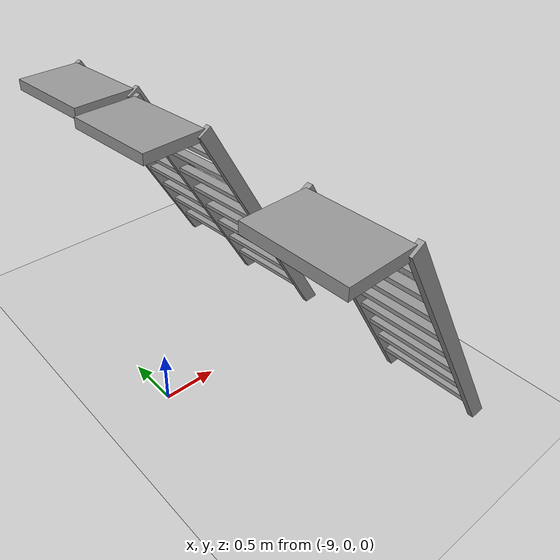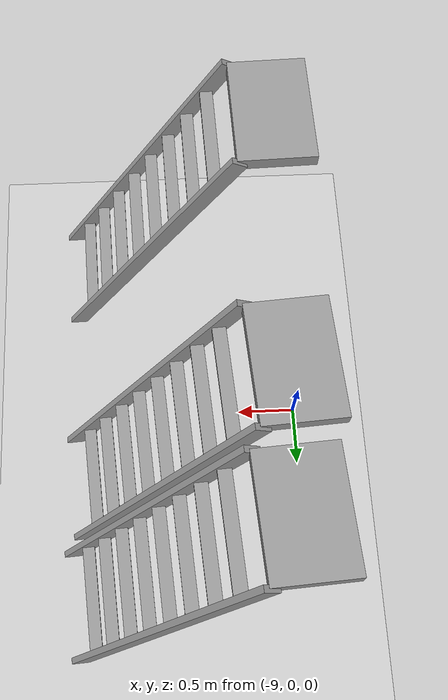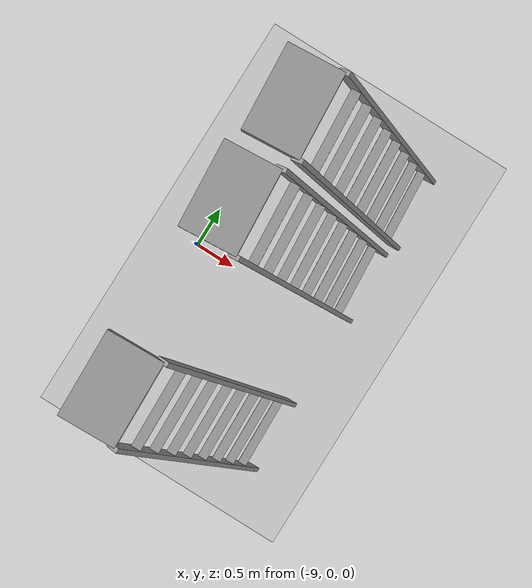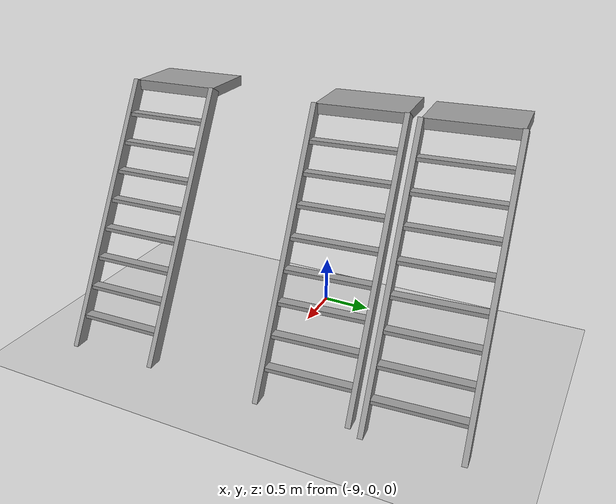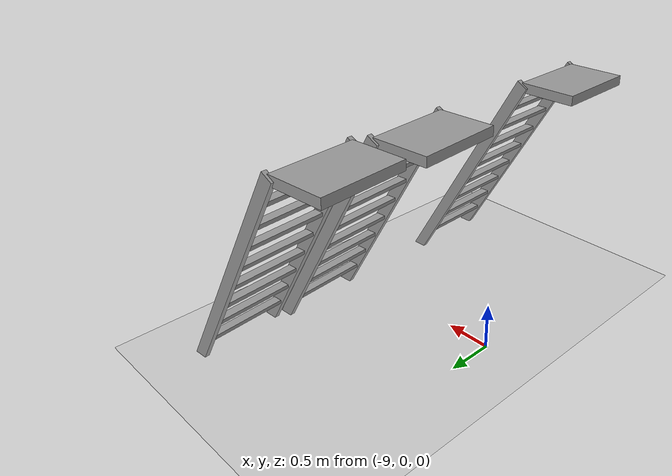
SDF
<sdf version="1.4">
 <world name="IGVC_Advanced_Course">
  <model name="ground_plane">
   <static>1</static>
   <link name="link">
    <collision name="collision">
     <geometry><plane><normal>0 0 1</normal><size>100 100</size></plane></geometry>
     <surface><friction><ode><mu>100</mu><mu2>50</mu2></ode></friction></surface>
    </collision>
    <visual name="visual">
     <cast_shadows>0</cast_shadows>
     <geometry><plane><normal>0 0 1</normal><size>100 100</size></plane></geometry>
     <material>
      <script><uri>file://media/materials/scripts/gazebo.material</uri><name>Gazebo/Grey</name></script>
     </material>
    </visual>
    <velocity_decay><linear>0</linear><angular>0</angular></velocity_decay>
   </link>
  </model>
  <model name="ladder_60deg_0rails_1">
   <static>1</static>
   <link name="step0">
    <pose>0 0.15396 0.266667 0 -0 0</pose>
    <inertial>
     <mass>9.75482</mass>
     <inertia>
      <ixx>0.00957124</ixx>
      <iyy>0.65963</iyy>
      <izz>0.666842</izz>
      <ixy>0</ixy>
      <ixz>0</ixz>
      <iyz>0</iyz>
     </inertia>
    </inertial>
    <collision name="collision"><geometry><box><size>0.9 0.1016 0.0381</size></box></geometry></collision>
    <visual name="visual">
     <geometry><box><size>0.9 0.1016 0.0381</size></box></geometry>
     <material>
      <script><uri>file://media/materials/scripts/gazebo.material</uri><name>Gazebo/Grey</name></script>
     </material>
    </visual>
    <velocity_decay><linear>0</linear><angular>0</angular></velocity_decay>
   </link>
   <link name="step1">
    <pose>0 0.30792 0.533333 0 -0 0</pose>
    <inertial>
     <mass>9.75482</mass>
     <inertia>
      <ixx>0.00957124</ixx>
      <iyy>0.65963</iyy>
      <izz>0.666842</izz>
      <ixy>0</ixy>
      <ixz>0</ixz>
      <iyz>0</iyz>
     </inertia>
    </inertial>
    <collision name="collision"><geometry><box><size>0.9 0.1016 0.0381</size></box></geometry></collision>
    <visual name="visual">
     <geometry><box><size>0.9 0.1016 0.0381</size></box></geometry>
     <material>
      <script><uri>file://media/materials/scripts/gazebo.material</uri><name>Gazebo/Grey</name></script>
     </material>
    </visual>
    <velocity_decay><linear>0</linear><angular>0</angular></velocity_decay>
   </link>
   <link name="step2">
    <pose>0 0.46188 0.8 0 -0 0</pose>
    <inertial>
     <mass>9.75482</mass>
     <inertia>
      <ixx>0.00957124</ixx>
      <iyy>0.65963</iyy>
      <izz>0.666842</izz>
      <ixy>0</ixy>
      <ixz>0</ixz>
      <iyz>0</iyz>
     </inertia>
    </inertial>
    <collision name="collision"><geometry><box><size>0.9 0.1016 0.0381</size></box></geometry></collision>
    <visual name="visual">
     <geometry><box><size>0.9 0.1016 0.0381</size></box></geometry>
     <material>
      <script><uri>file://media/materials/scripts/gazebo.material</uri><name>Gazebo/Grey</name></script>
     </material>
    </visual>
    <velocity_decay><linear>0</linear><angular>0</angular></velocity_decay>
   </link>
   <link name="step3">
    <pose>0 0.61584 1.06667 0 -0 0</pose>
    <inertial>
     <mass>9.75482</mass>
     <inertia>
      <ixx>0.00957124</ixx>
      <iyy>0.65963</iyy>
      <izz>0.666842</izz>
      <ixy>0</ixy>
      <ixz>0</ixz>
      <iyz>0</iyz>
     </inertia>
    </inertial>
    <collision name="collision"><geometry><box><size>0.9 0.1016 0.0381</size></box></geometry></collision>
    <visual name="visual">
     <geometry><box><size>0.9 0.1016 0.0381</size></box></geometry>
     <material>
      <script><uri>file://media/materials/scripts/gazebo.material</uri><name>Gazebo/Grey</name></script>
     </material>
    </visual>
    <velocity_decay><linear>0</linear><angular>0</angular></velocity_decay>
   </link>
   <link name="step4">
    <pose>0 0.7698 1.33333 0 -0 0</pose>
    <inertial>
     <mass>9.75482</mass>
     <inertia>
      <ixx>0.00957124</ixx>
      <iyy>0.65963</iyy>
      <izz>0.666842</izz>
      <ixy>0</ixy>
      <ixz>0</ixz>
      <iyz>0</iyz>
     </inertia>
    </inertial>
    <collision name="collision"><geometry><box><size>0.9 0.1016 0.0381</size></box></geometry></collision>
    <visual name="visual">
     <geometry><box><size>0.9 0.1016 0.0381</size></box></geometry>
     <material>
      <script><uri>file://media/materials/scripts/gazebo.material</uri><name>Gazebo/Grey</name></script>
     </material>
    </visual>
    <velocity_decay><linear>0</linear><angular>0</angular></velocity_decay>
   </link>
   <link name="step5">
    <pose>0 0.92376 1.6 0 -0 0</pose>
    <inertial>
     <mass>9.75482</mass>
     <inertia>
      <ixx>0.00957124</ixx>
      <iyy>0.65963</iyy>
      <izz>0.666842</izz>
      <ixy>0</ixy>
      <ixz>0</ixz>
      <iyz>0</iyz>
     </inertia>
    </inertial>
    <collision name="collision"><geometry><box><size>0.9 0.1016 0.0381</size></box></geometry></collision>
    <visual name="visual">
     <geometry><box><size>0.9 0.1016 0.0381</size></box></geometry>
     <material>
      <script><uri>file://media/materials/scripts/gazebo.material</uri><name>Gazebo/Grey</name></script>
     </material>
    </visual>
    <velocity_decay><linear>0</linear><angular>0</angular></velocity_decay>
   </link>
   <link name="step6">
    <pose>0 1.07772 1.86667 0 -0 0</pose>
    <inertial>
     <mass>9.75482</mass>
     <inertia>
      <ixx>0.00957124</ixx>
      <iyy>0.65963</iyy>
      <izz>0.666842</izz>
      <ixy>0</ixy>
      <ixz>0</ixz>
      <iyz>0</iyz>
     </inertia>
    </inertial>
    <collision name="collision"><geometry><box><size>0.9 0.1016 0.0381</size></box></geometry></collision>
    <visual name="visual">
     <geometry><box><size>0.9 0.1016 0.0381</size></box></geometry>
     <material>
      <script><uri>file://media/materials/scripts/gazebo.material</uri><name>Gazebo/Grey</name></script>
     </material>
    </visual>
    <velocity_decay><linear>0</linear><angular>0</angular></velocity_decay>
   </link>
   <link name="step7">
    <pose>0 1.23168 2.13333 0 -0 0</pose>
    <inertial>
     <mass>9.75482</mass>
     <inertia>
      <ixx>0.00957124</ixx>
      <iyy>0.65963</iyy>
      <izz>0.666842</izz>
      <ixy>0</ixy>
      <ixz>0</ixz>
      <iyz>0</iyz>
     </inertia>
    </inertial>
    <collision name="collision"><geometry><box><size>0.9 0.1016 0.0381</size></box></geometry></collision>
    <visual name="visual">
     <geometry><box><size>0.9 0.1016 0.0381</size></box></geometry>
     <material>
      <script><uri>file://media/materials/scripts/gazebo.material</uri><name>Gazebo/Grey</name></script>
     </material>
    </visual>
    <velocity_decay><linear>0</linear><angular>0</angular></velocity_decay>
   </link>
   <link name="landing">
    <pose>0 1.68564 2.4 0 -0 0</pose>
    <inertial>
     <mass>57.6072</mass>
     <inertia><ixx>1.73518</ixx><iyy>3.89545</iyy><izz>5.6167</izz><ixy>0</ixy><ixz>0</ixz><iyz>0</iyz></inertia>
    </inertial>
    <collision name="collision"><geometry><box><size>0.9 0.6 0.1016</size></box></geometry></collision>
    <visual name="visual">
     <geometry><box><size>0.9 0.6 0.1016</size></box></geometry>
     <material>
      <script><uri>file://media/materials/scripts/gazebo.material</uri><name>Gazebo/Grey</name></script>
     </material>
    </visual>
    <velocity_decay><linear>0</linear><angular>0</angular></velocity_decay>
   </link>
   <link name="left_side_wall">
    <pose>-0.45 0.69282 1.2 1.0472 -0 0</pose>
    <collision name="collision"><geometry><box><size>0.0508 2.85128 0.13</size></box></geometry></collision>
    <visual name="visual">
     <geometry><box><size>0.0508 2.85128 0.13</size></box></geometry>
     <material>
      <script><uri>file://media/materials/scripts/gazebo.material</uri><name>Gazebo/Grey</name></script>
     </material>
    </visual>
    <velocity_decay><linear>0</linear><angular>0</angular></velocity_decay>
   </link>
   <link name="right_side_wall">
    <pose>0.45 0.69282 1.2 1.0472 -0 0</pose>
    <collision name="collision"><geometry><box><size>0.0508 2.85128 0.13</size></box></geometry></collision>
    <visual name="visual">
     <geometry><box><size>0.0508 2.85128 0.13</size></box></geometry>
     <material>
      <script><uri>file://media/materials/scripts/gazebo.material</uri><name>Gazebo/Grey</name></script>
     </material>
    </visual>
    <velocity_decay><linear>0</linear><angular>0</angular></velocity_decay>
   </link>
   <pose>-7.03222 -1.46285 0 0 -0 1.6</pose>
  </model>
  <model name="ladder_60deg_0rails_3">
   <static>1</static>
   <link name="step0">
    <pose>0 0.15396 0.266667 0 -0 0</pose>
    <inertial>
     <mass>9.75482</mass>
     <inertia>
      <ixx>0.00957124</ixx>
      <iyy>0.65963</iyy>
      <izz>0.666842</izz>
      <ixy>0</ixy>
      <ixz>0</ixz>
      <iyz>0</iyz>
     </inertia>
    </inertial>
    <collision name="collision"><geometry><box><size>0.9 0.1016 0.0381</size></box></geometry></collision>
    <visual name="visual">
     <geometry><box><size>0.9 0.1016 0.0381</size></box></geometry>
     <material>
      <script><uri>file://media/materials/scripts/gazebo.material</uri><name>Gazebo/Grey</name></script>
     </material>
    </visual>
    <velocity_decay><linear>0</linear><angular>0</angular></velocity_decay>
   </link>
   <link name="step1">
    <pose>0 0.30792 0.533333 0 -0 0</pose>
    <inertial>
     <mass>9.75482</mass>
     <inertia>
      <ixx>0.00957124</ixx>
      <iyy>0.65963</iyy>
      <izz>0.666842</izz>
      <ixy>0</ixy>
      <ixz>0</ixz>
      <iyz>0</iyz>
     </inertia>
    </inertial>
    <collision name="collision"><geometry><box><size>0.9 0.1016 0.0381</size></box></geometry></collision>
    <visual name="visual">
     <geometry><box><size>0.9 0.1016 0.0381</size></box></geometry>
     <material>
      <script><uri>file://media/materials/scripts/gazebo.material</uri><name>Gazebo/Grey</name></script>
     </material>
    </visual>
    <velocity_decay><linear>0</linear><angular>0</angular></velocity_decay>
   </link>
   <link name="step2">
    <pose>0 0.46188 0.8 0 -0 0</pose>
    <inertial>
     <mass>9.75482</mass>
     <inertia>
      <ixx>0.00957124</ixx>
      <iyy>0.65963</iyy>
      <izz>0.666842</izz>
      <ixy>0</ixy>
      <ixz>0</ixz>
      <iyz>0</iyz>
     </inertia>
    </inertial>
    <collision name="collision"><geometry><box><size>0.9 0.1016 0.0381</size></box></geometry></collision>
    <visual name="visual">
     <geometry><box><size>0.9 0.1016 0.0381</size></box></geometry>
     <material>
      <script><uri>file://media/materials/scripts/gazebo.material</uri><name>Gazebo/Grey</name></script>
     </material>
    </visual>
    <velocity_decay><linear>0</linear><angular>0</angular></velocity_decay>
   </link>
   <link name="step3">
    <pose>0 0.61584 1.06667 0 -0 0</pose>
    <inertial>
     <mass>9.75482</mass>
     <inertia>
      <ixx>0.00957124</ixx>
      <iyy>0.65963</iyy>
      <izz>0.666842</izz>
      <ixy>0</ixy>
      <ixz>0</ixz>
      <iyz>0</iyz>
     </inertia>
    </inertial>
    <collision name="collision"><geometry><box><size>0.9 0.1016 0.0381</size></box></geometry></collision>
    <visual name="visual">
     <geometry><box><size>0.9 0.1016 0.0381</size></box></geometry>
     <material>
      <script><uri>file://media/materials/scripts/gazebo.material</uri><name>Gazebo/Grey</name></script>
     </material>
    </visual>
    <velocity_decay><linear>0</linear><angular>0</angular></velocity_decay>
   </link>
   <link name="step4">
    <pose>0 0.7698 1.33333 0 -0 0</pose>
    <inertial>
     <mass>9.75482</mass>
     <inertia>
      <ixx>0.00957124</ixx>
      <iyy>0.65963</iyy>
      <izz>0.666842</izz>
      <ixy>0</ixy>
      <ixz>0</ixz>
      <iyz>0</iyz>
     </inertia>
    </inertial>
    <collision name="collision"><geometry><box><size>0.9 0.1016 0.0381</size></box></geometry></collision>
    <visual name="visual">
     <geometry><box><size>0.9 0.1016 0.0381</size></box></geometry>
     <material>
      <script><uri>file://media/materials/scripts/gazebo.material</uri><name>Gazebo/Grey</name></script>
     </material>
    </visual>
    <velocity_decay><linear>0</linear><angular>0</angular></velocity_decay>
   </link>
   <link name="step5">
    <pose>0 0.92376 1.6 0 -0 0</pose>
    <inertial>
     <mass>9.75482</mass>
     <inertia>
      <ixx>0.00957124</ixx>
      <iyy>0.65963</iyy>
      <izz>0.666842</izz>
      <ixy>0</ixy>
      <ixz>0</ixz>
      <iyz>0</iyz>
     </inertia>
    </inertial>
    <collision name="collision"><geometry><box><size>0.9 0.1016 0.0381</size></box></geometry></collision>
    <visual name="visual">
     <geometry><box><size>0.9 0.1016 0.0381</size></box></geometry>
     <material>
      <script><uri>file://media/materials/scripts/gazebo.material</uri><name>Gazebo/Grey</name></script>
     </material>
    </visual>
    <velocity_decay><linear>0</linear><angular>0</angular></velocity_decay>
   </link>
   <link name="step6">
    <pose>0 1.07772 1.86667 0 -0 0</pose>
    <inertial>
     <mass>9.75482</mass>
     <inertia>
      <ixx>0.00957124</ixx>
      <iyy>0.65963</iyy>
      <izz>0.666842</izz>
      <ixy>0</ixy>
      <ixz>0</ixz>
      <iyz>0</iyz>
     </inertia>
    </inertial>
    <collision name="collision"><geometry><box><size>0.9 0.1016 0.0381</size></box></geometry></collision>
    <visual name="visual">
     <geometry><box><size>0.9 0.1016 0.0381</size></box></geometry>
     <material>
      <script><uri>file://media/materials/scripts/gazebo.material</uri><name>Gazebo/Grey</name></script>
     </material>
    </visual>
    <velocity_decay><linear>0</linear><angular>0</angular></velocity_decay>
   </link>
   <link name="step7">
    <pose>0 1.23168 2.13333 0 -0 0</pose>
    <inertial>
     <mass>9.75482</mass>
     <inertia>
      <ixx>0.00957124</ixx>
      <iyy>0.65963</iyy>
      <izz>0.666842</izz>
      <ixy>0</ixy>
      <ixz>0</ixz>
      <iyz>0</iyz>
     </inertia>
    </inertial>
    <collision name="collision"><geometry><box><size>0.9 0.1016 0.0381</size></box></geometry></collision>
    <visual name="visual">
     <geometry><box><size>0.9 0.1016 0.0381</size></box></geometry>
     <material>
      <script><uri>file://media/materials/scripts/gazebo.material</uri><name>Gazebo/Grey</name></script>
     </material>
    </visual>
    <velocity_decay><linear>0</linear><angular>0</angular></velocity_decay>
   </link>
   <link name="landing">
    <pose>0 1.68564 2.4 0 -0 0</pose>
    <inertial>
     <mass>57.6072</mass>
     <inertia><ixx>1.73518</ixx><iyy>3.89545</iyy><izz>5.6167</izz><ixy>0</ixy><ixz>0</ixz><iyz>0</iyz></inertia>
    </inertial>
    <collision name="collision"><geometry><box><size>0.9 0.6 0.1016</size></box></geometry></collision>
    <visual name="visual">
     <geometry><box><size>0.9 0.6 0.1016</size></box></geometry>
     <material>
      <script><uri>file://media/materials/scripts/gazebo.material</uri><name>Gazebo/Grey</name></script>
     </material>
    </visual>
    <velocity_decay><linear>0</linear><angular>0</angular></velocity_decay>
   </link>
   <link name="left_side_wall">
    <pose>-0.45 0.69282 1.2 1.0472 -0 0</pose>
    <collision name="collision"><geometry><box><size>0.0508 2.85128 0.13</size></box></geometry></collision>
    <visual name="visual">
     <geometry><box><size>0.0508 2.85128 0.13</size></box></geometry>
     <material>
      <script><uri>file://media/materials/scripts/gazebo.material</uri><name>Gazebo/Grey</name></script>
     </material>
    </visual>
    <velocity_decay><linear>0</linear><angular>0</angular></velocity_decay>
   </link>
   <link name="right_side_wall">
    <pose>0.45 0.69282 1.2 1.0472 -0 0</pose>
    <collision name="collision"><geometry><box><size>0.0508 2.85128 0.13</size></box></geometry></collision>
    <visual name="visual">
     <geometry><box><size>0.0508 2.85128 0.13</size></box></geometry>
     <material>
      <script><uri>file://media/materials/scripts/gazebo.material</uri><name>Gazebo/Grey</name></script>
     </material>
    </visual>
    <velocity_decay><linear>0</linear><angular>0</angular></velocity_decay>
   </link>
   <pose>-7.04031 0.644917 0 0 -0 1.64</pose>
  </model>
  <model name="ladder_60deg_0rails_4">
   <static>1</static>
   <link name="step0">
    <pose>0 0.15396 0.266667 0 -0 0</pose>
    <inertial>
     <mass>9.75482</mass>
     <inertia>
      <ixx>0.00957124</ixx>
      <iyy>0.65963</iyy>
      <izz>0.666842</izz>
      <ixy>0</ixy>
      <ixz>0</ixz>
      <iyz>0</iyz>
     </inertia>
    </inertial>
    <collision name="collision"><geometry><box><size>0.9 0.1016 0.0381</size></box></geometry></collision>
    <visual name="visual">
     <geometry><box><size>0.9 0.1016 0.0381</size></box></geometry>
     <material>
      <script><uri>file://media/materials/scripts/gazebo.material</uri><name>Gazebo/Grey</name></script>
     </material>
    </visual>
    <velocity_decay><linear>0</linear><angular>0</angular></velocity_decay>
   </link>
   <link name="step1">
    <pose>0 0.30792 0.533333 0 -0 0</pose>
    <inertial>
     <mass>9.75482</mass>
     <inertia>
      <ixx>0.00957124</ixx>
      <iyy>0.65963</iyy>
      <izz>0.666842</izz>
      <ixy>0</ixy>
      <ixz>0</ixz>
      <iyz>0</iyz>
     </inertia>
    </inertial>
    <collision name="collision"><geometry><box><size>0.9 0.1016 0.0381</size></box></geometry></collision>
    <visual name="visual">
     <geometry><box><size>0.9 0.1016 0.0381</size></box></geometry>
     <material>
      <script><uri>file://media/materials/scripts/gazebo.material</uri><name>Gazebo/Grey</name></script>
     </material>
    </visual>
    <velocity_decay><linear>0</linear><angular>0</angular></velocity_decay>
   </link>
   <link name="step2">
    <pose>0 0.46188 0.8 0 -0 0</pose>
    <inertial>
     <mass>9.75482</mass>
     <inertia>
      <ixx>0.00957124</ixx>
      <iyy>0.65963</iyy>
      <izz>0.666842</izz>
      <ixy>0</ixy>
      <ixz>0</ixz>
      <iyz>0</iyz>
     </inertia>
    </inertial>
    <collision name="collision"><geometry><box><size>0.9 0.1016 0.0381</size></box></geometry></collision>
    <visual name="visual">
     <geometry><box><size>0.9 0.1016 0.0381</size></box></geometry>
     <material>
      <script><uri>file://media/materials/scripts/gazebo.material</uri><name>Gazebo/Grey</name></script>
     </material>
    </visual>
    <velocity_decay><linear>0</linear><angular>0</angular></velocity_decay>
   </link>
   <link name="step3">
    <pose>0 0.61584 1.06667 0 -0 0</pose>
    <inertial>
     <mass>9.75482</mass>
     <inertia>
      <ixx>0.00957124</ixx>
      <iyy>0.65963</iyy>
      <izz>0.666842</izz>
      <ixy>0</ixy>
      <ixz>0</ixz>
      <iyz>0</iyz>
     </inertia>
    </inertial>
    <collision name="collision"><geometry><box><size>0.9 0.1016 0.0381</size></box></geometry></collision>
    <visual name="visual">
     <geometry><box><size>0.9 0.1016 0.0381</size></box></geometry>
     <material>
      <script><uri>file://media/materials/scripts/gazebo.material</uri><name>Gazebo/Grey</name></script>
     </material>
    </visual>
    <velocity_decay><linear>0</linear><angular>0</angular></velocity_decay>
   </link>
   <link name="step4">
    <pose>0 0.7698 1.33333 0 -0 0</pose>
    <inertial>
     <mass>9.75482</mass>
     <inertia>
      <ixx>0.00957124</ixx>
      <iyy>0.65963</iyy>
      <izz>0.666842</izz>
      <ixy>0</ixy>
      <ixz>0</ixz>
      <iyz>0</iyz>
     </inertia>
    </inertial>
    <collision name="collision"><geometry><box><size>0.9 0.1016 0.0381</size></box></geometry></collision>
    <visual name="visual">
     <geometry><box><size>0.9 0.1016 0.0381</size></box></geometry>
     <material>
      <script><uri>file://media/materials/scripts/gazebo.material</uri><name>Gazebo/Grey</name></script>
     </material>
    </visual>
    <velocity_decay><linear>0</linear><angular>0</angular></velocity_decay>
   </link>
   <link name="step5">
    <pose>0 0.92376 1.6 0 -0 0</pose>
    <inertial>
     <mass>9.75482</mass>
     <inertia>
      <ixx>0.00957124</ixx>
      <iyy>0.65963</iyy>
      <izz>0.666842</izz>
      <ixy>0</ixy>
      <ixz>0</ixz>
      <iyz>0</iyz>
     </inertia>
    </inertial>
    <collision name="collision"><geometry><box><size>0.9 0.1016 0.0381</size></box></geometry></collision>
    <visual name="visual">
     <geometry><box><size>0.9 0.1016 0.0381</size></box></geometry>
     <material>
      <script><uri>file://media/materials/scripts/gazebo.material</uri><name>Gazebo/Grey</name></script>
     </material>
    </visual>
    <velocity_decay><linear>0</linear><angular>0</angular></velocity_decay>
   </link>
   <link name="step6">
    <pose>0 1.07772 1.86667 0 -0 0</pose>
    <inertial>
     <mass>9.75482</mass>
     <inertia>
      <ixx>0.00957124</ixx>
      <iyy>0.65963</iyy>
      <izz>0.666842</izz>
      <ixy>0</ixy>
      <ixz>0</ixz>
      <iyz>0</iyz>
     </inertia>
    </inertial>
    <collision name="collision"><geometry><box><size>0.9 0.1016 0.0381</size></box></geometry></collision>
    <visual name="visual">
     <geometry><box><size>0.9 0.1016 0.0381</size></box></geometry>
     <material>
      <script><uri>file://media/materials/scripts/gazebo.material</uri><name>Gazebo/Grey</name></script>
     </material>
    </visual>
    <velocity_decay><linear>0</linear><angular>0</angular></velocity_decay>
   </link>
   <link name="step7">
    <pose>0 1.23168 2.13333 0 -0 0</pose>
    <inertial>
     <mass>9.75482</mass>
     <inertia>
      <ixx>0.00957124</ixx>
      <iyy>0.65963</iyy>
      <izz>0.666842</izz>
      <ixy>0</ixy>
      <ixz>0</ixz>
      <iyz>0</iyz>
     </inertia>
    </inertial>
    <collision name="collision"><geometry><box><size>0.9 0.1016 0.0381</size></box></geometry></collision>
    <visual name="visual">
     <geometry><box><size>0.9 0.1016 0.0381</size></box></geometry>
     <material>
      <script><uri>file://media/materials/scripts/gazebo.material</uri><name>Gazebo/Grey</name></script>
     </material>
    </visual>
    <velocity_decay><linear>0</linear><angular>0</angular></velocity_decay>
   </link>
   <link name="landing">
    <pose>0 1.68564 2.4 0 -0 0</pose>
    <inertial>
     <mass>57.6072</mass>
     <inertia><ixx>1.73518</ixx><iyy>3.89545</iyy><izz>5.6167</izz><ixy>0</ixy><ixz>0</ixz><iyz>0</iyz></inertia>
    </inertial>
    <collision name="collision"><geometry><box><size>0.9 0.6 0.1016</size></box></geometry></collision>
    <visual name="visual">
     <geometry><box><size>0.9 0.6 0.1016</size></box></geometry>
     <material>
      <script><uri>file://media/materials/scripts/gazebo.material</uri><name>Gazebo/Grey</name></script>
     </material>
    </visual>
    <velocity_decay><linear>0</linear><angular>0</angular></velocity_decay>
   </link>
   <link name="left_side_wall">
    <pose>-0.45 0.69282 1.2 1.0472 -0 0</pose>
    <collision name="collision"><geometry><box><size>0.0508 2.85128 0.13</size></box></geometry></collision>
    <visual name="visual">
     <geometry><box><size>0.0508 2.85128 0.13</size></box></geometry>
     <material>
      <script><uri>file://media/materials/scripts/gazebo.material</uri><name>Gazebo/Grey</name></script>
     </material>
    </visual>
    <velocity_decay><linear>0</linear><angular>0</angular></velocity_decay>
   </link>
   <link name="right_side_wall">
    <pose>0.45 0.69282 1.2 1.0472 -0 0</pose>
    <collision name="collision"><geometry><box><size>0.0508 2.85128 0.13</size></box></geometry></collision>
    <visual name="visual">
     <geometry><box><size>0.0508 2.85128 0.13</size></box></geometry>
     <material>
      <script><uri>file://media/materials/scripts/gazebo.material</uri><name>Gazebo/Grey</name></script>
     </material>
    </visual>
    <velocity_decay><linear>0</linear><angular>0</angular></velocity_decay>
   </link>
   <pose>-7.01978 1.69071 0 0 -0 1.64</pose>
  </model>
 </world>
</sdf>
